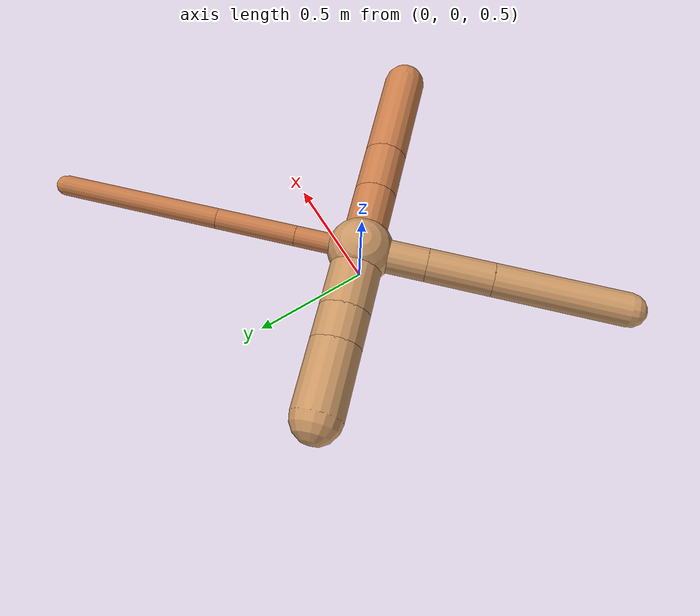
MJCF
<?xml version="1.0" ?>
<mujoco model="ant">

	<compiler angle="degree" coordinate="local" inertiafromgeom="true"/>

	<option integrator="RK4" timestep="0.01"/>

	<custom>

		<numeric data="0.0 0.0 0.55 1.0 0.0 0.0 0.0 0.0 1.0 0.0 -1.0 0.0 -1.0 0.0 1.0" name="init_qpos"/>

	</custom>

	<default>

		<joint armature="1" damping="1" limited="true"/>

		<geom conaffinity="0" condim="3" density="5.0" friction="1.5 0.1 0.1" margin="0.01" rgba="0.8 0.6 0.4 1"/>

	</default>

	<worldbody>

		<body name="torso" pos="0 0 0.75">

			<geom name="torso_geom" pos="0 0 0" size="0.1413114138232141" type="sphere"/>

			<!--joint armature="0" damping="0" limited="false" margin="0.01" name="root" pos="0 0 0" type="free"/-->

			<body name="front_left_leg" pos="0 0 0">

				<geom fromto="0 0 0 0.2 0.2 0" name="aux_1_geom" size="0.044126329420413946" type="capsule" rgba=".8 .5 .3 1"/>

				<body name="aux_1" pos="0.2 0.2 0">

					<joint axis="0 0 1" name="hip_1" pos="0.0 0.0 0.0" range="-40 40" type="hinge"/>

					<geom fromto="0 0 0 0.24579561291169966 0.24579561291169966 0" name="left_leg_geom" size="0.044126329420413946" type="capsule" rgba=".8 .5 .3 1"/>

					<body pos="0.24579561291169966 0.24579561291169966 0" name="front_left_foot">

						<joint axis="-1 1 0" name="ankle_1" pos="0.0 0.0 0.0" range="30 100" type="hinge"/>

						<geom fromto="0 0 0 0.4915912258233993 0.4915912258233993 0" name="left_ankle_geom" size="0.044126329420413946" type="capsule" rgba=".8 .5 .3 1"/>

					</body>

				</body>

			</body>

			<body name="front_right_leg" pos="0 0 0">

				<geom fromto="0 0 0 -0.2 0.2 0" name="aux_2_geom" size="0.10825724023888941" type="capsule"/>

				<body name="aux_2" pos="-0.2 0.2 0">

					<joint axis="0 0 1" name="hip_2" pos="0.0 0.0 0.0" range="-40 40" type="hinge"/>

					<geom fromto="0 0 0 -0.10394887423435568 0.10394887423435568 0" name="right_leg_geom" size="0.10825724023888941" type="capsule"/>

					<body pos="-0.10394887423435568 0.10394887423435568 0" name="front_right_foot">

						<joint axis="1 1 0" name="ankle_2" pos="0.0 0.0 0.0" range="-100 -30" type="hinge"/>

						<geom fromto="0 0 0 -0.20789774846871137 0.20789774846871137 0" name="right_ankle_geom" size="0.10825724023888941" type="capsule"/>

					</body>

				</body>

			</body>

			<body name="left_back_leg" pos="0 0 0">

				<geom fromto="0 0 0 -0.2 -0.2 0" name="aux_3_geom" size="0.07108165170270726" type="capsule"/>

				<body name="aux_3" pos="-0.2 -0.2 0">

					<joint axis="0 0 1" name="hip_3" pos="0.0 0.0 0.0" range="-40 40" type="hinge"/>

					<geom fromto="0 0 0 -0.19571581908468783 -0.19571581908468783 0" name="back_leg_geom" size="0.07108165170270726" type="capsule"/>

					<body pos="-0.19571581908468783 -0.19571581908468783 0" name="left_back_foot">

						<joint axis="-1 1 0" name="ankle_3" pos="0.0 0.0 0.0" range="-100 -30" type="hinge"/>

						<geom fromto="0 0 0 -0.39143163816937565 -0.39143163816937565 0" name="third_ankle_geom" size="0.07108165170270726" type="capsule"/>

					</body>

				</body>

			</body>

			<body name="right_back_leg" pos="0 0 0">

				<geom fromto="0 0 0 0.2 -0.2 0" name="aux_4_geom" size="0.09120677111604246" type="capsule" rgba=".8 .5 .3 1"/>

				<body name="aux_4" pos="0.2 -0.2 0">

					<joint axis="0 0 1" name="hip_4" pos="0.0 0.0 0.0" range="-40 40" type="hinge"/>

					<geom fromto="0 0 0 0.147012806054371 -0.147012806054371 0" name="rightback_leg_geom" size="0.09120677111604246" type="capsule" rgba=".8 .5 .3 1"/>

					<body pos="0.147012806054371 -0.147012806054371 0" name="right_back_foot">

						<joint axis="1 1 0" name="ankle_4" pos="0.0 0.0 0.0" range="30 100" type="hinge"/>

						<geom fromto="0 0 0 0.294025612108742 -0.294025612108742 0" name="fourth_ankle_geom" size="0.09120677111604246" type="capsule" rgba=".8 .5 .3 1"/>

					</body>

				</body>

			</body>

		</body>

	</worldbody>

	<actuator>

		<motor ctrllimited="true" ctrlrange="-1.0 1.0" joint="hip_4" gear="150"/>

		<motor ctrllimited="true" ctrlrange="-1.0 1.0" joint="ankle_4" gear="150"/>

		<motor ctrllimited="true" ctrlrange="-1.0 1.0" joint="hip_1" gear="150"/>

		<motor ctrllimited="true" ctrlrange="-1.0 1.0" joint="ankle_1" gear="150"/>

		<motor ctrllimited="true" ctrlrange="-1.0 1.0" joint="hip_2" gear="150"/>

		<motor ctrllimited="true" ctrlrange="-1.0 1.0" joint="ankle_2" gear="150"/>

		<motor ctrllimited="true" ctrlrange="-1.0 1.0" joint="hip_3" gear="150"/>

		<motor ctrllimited="true" ctrlrange="-1.0 1.0" joint="ankle_3" gear="150"/>

	</actuator>

</mujoco>
